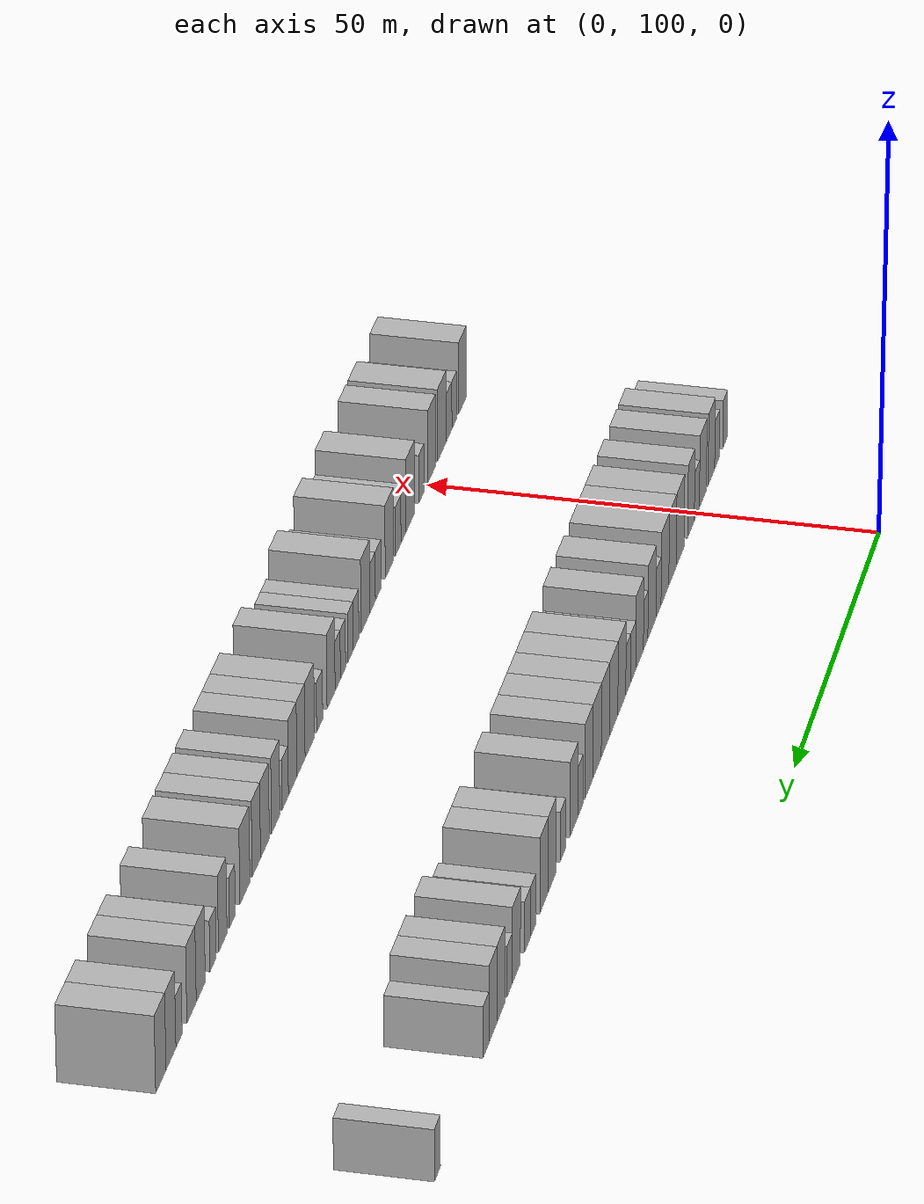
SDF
<sdf version="1.6">
 <world name="default">
  <model name="building_77">
   <static>1</static>
   <pose>25.0000 84.0003 0 0.000000 0.000000 0.000000</pose>
   <link name="link">
    <pose>0 0 3.00 0 0 0</pose>
    <collision name="collision"><geometry><box><size>10.0000 2.5776 6.0000</size></box></geometry></collision>
    <visual name="visual">
     <cast_shadows>0</cast_shadows>
     <geometry><box><size>10.0000 2.5776 6.0000</size></box></geometry>
     <material>
      <script>
       <uri>model://HANNAS_wall/materials/scripts</uri>
       <uri>model://HANNAS_wall/materials/textures</uri>
       <name>vrc/HANNAS_wall</name>
      </script>
     </material>
    </visual>
   </link>
  </model>
  <model name="building_78">
   <static>1</static>
   <pose>25.0000 88.6658 0 0.000000 0.000000 0.000000</pose>
   <link name="link">
    <pose>0 0 3.00 0 0 0</pose>
    <collision name="collision"><geometry><box><size>10.0000 2.7533 6.0000</size></box></geometry></collision>
    <visual name="visual">
     <cast_shadows>0</cast_shadows>
     <geometry><box><size>10.0000 2.7533 6.0000</size></box></geometry>
     <material>
      <script>
       <uri>model://HANNAS_wall/materials/scripts</uri>
       <uri>model://HANNAS_wall/materials/textures</uri>
       <name>vrc/HANNAS_wall</name>
      </script>
     </material>
    </visual>
   </link>
  </model>
  <model name="building_79">
   <static>1</static>
   <pose>25.0000 91.9512 0 0.000000 0.000000 0.000000</pose>
   <link name="link">
    <pose>0 0 4.50 0 0 0</pose>
    <collision name="collision"><geometry><box><size>10.0000 3.8175 9.0000</size></box></geometry></collision>
    <visual name="visual">
     <cast_shadows>0</cast_shadows>
     <geometry><box><size>10.0000 3.8175 9.0000</size></box></geometry>
     <material>
      <script>
       <uri>model://HANNAS_wall/materials/scripts</uri>
       <uri>model://HANNAS_wall/materials/textures</uri>
       <name>vrc/HANNAS_wall</name>
      </script>
     </material>
    </visual>
   </link>
  </model>
  <model name="building_80">
   <static>1</static>
   <pose>25.0000 96.8436 0 0.000000 0.000000 0.000000</pose>
   <link name="link">
    <pose>0 0 4.50 0 0 0</pose>
    <collision name="collision"><geometry><box><size>10.0000 3.9672 9.0000</size></box></geometry></collision>
    <visual name="visual">
     <cast_shadows>0</cast_shadows>
     <geometry><box><size>10.0000 3.9672 9.0000</size></box></geometry>
     <material>
      <script>
       <uri>model://HANNAS_wall/materials/scripts</uri>
       <uri>model://HANNAS_wall/materials/textures</uri>
       <name>vrc/HANNAS_wall</name>
      </script>
     </material>
    </visual>
   </link>
  </model>
  <model name="building_81">
   <static>1</static>
   <pose>25.0000 100.2625 0 0.000000 0.000000 0.000000</pose>
   <link name="link">
    <pose>0 0 3.00 0 0 0</pose>
    <collision name="collision"><geometry><box><size>10.0000 2.8705 6.0000</size></box></geometry></collision>
    <visual name="visual">
     <cast_shadows>0</cast_shadows>
     <geometry><box><size>10.0000 2.8705 6.0000</size></box></geometry>
     <material>
      <script>
       <uri>model://HANNAS_wall/materials/scripts</uri>
       <uri>model://HANNAS_wall/materials/textures</uri>
       <name>vrc/HANNAS_wall</name>
      </script>
     </material>
    </visual>
   </link>
  </model>
  <model name="building_82">
   <static>1</static>
   <pose>25.0000 103.6023 0 0.000000 0.000000 0.000000</pose>
   <link name="link">
    <pose>0 0 4.50 0 0 0</pose>
    <collision name="collision"><geometry><box><size>10.0000 3.8092 9.0000</size></box></geometry></collision>
    <visual name="visual">
     <cast_shadows>0</cast_shadows>
     <geometry><box><size>10.0000 3.8092 9.0000</size></box></geometry>
     <material>
      <script>
       <uri>model://HANNAS_wall/materials/scripts</uri>
       <uri>model://HANNAS_wall/materials/textures</uri>
       <name>vrc/HANNAS_wall</name>
      </script>
     </material>
    </visual>
   </link>
  </model>
  <model name="building_83">
   <static>1</static>
   <pose>25.0000 109.7144 0 0.000000 0.000000 0.000000</pose>
   <link name="link">
    <pose>0 0 4.50 0 0 0</pose>
    <collision name="collision"><geometry><box><size>10.0000 4.4150 9.0000</size></box></geometry></collision>
    <visual name="visual">
     <cast_shadows>0</cast_shadows>
     <geometry><box><size>10.0000 4.4150 9.0000</size></box></geometry>
     <material>
      <script>
       <uri>model://HANNAS_wall/materials/scripts</uri>
       <uri>model://HANNAS_wall/materials/textures</uri>
       <name>vrc/HANNAS_wall</name>
      </script>
     </material>
    </visual>
   </link>
  </model>
  <model name="building_84">
   <static>1</static>
   <pose>25.0000 113.9698 0 0.000000 0.000000 0.000000</pose>
   <link name="link">
    <pose>0 0 4.50 0 0 0</pose>
    <collision name="collision"><geometry><box><size>10.0000 4.0959 9.0000</size></box></geometry></collision>
    <visual name="visual">
     <cast_shadows>0</cast_shadows>
     <geometry><box><size>10.0000 4.0959 9.0000</size></box></geometry>
     <material>
      <script>
       <uri>model://HANNAS_wall/materials/scripts</uri>
       <uri>model://HANNAS_wall/materials/textures</uri>
       <name>vrc/HANNAS_wall</name>
      </script>
     </material>
    </visual>
   </link>
  </model>
  <model name="building_85">
   <static>1</static>
   <pose>25.0000 118.1588 0 0.000000 0.000000 0.000000</pose>
   <link name="link">
    <pose>0 0 4.50 0 0 0</pose>
    <collision name="collision"><geometry><box><size>10.0000 4.2819 9.0000</size></box></geometry></collision>
    <visual name="visual">
     <cast_shadows>0</cast_shadows>
     <geometry><box><size>10.0000 4.2819 9.0000</size></box></geometry>
     <material>
      <script>
       <uri>model://HANNAS_wall/materials/scripts</uri>
       <uri>model://HANNAS_wall/materials/textures</uri>
       <name>vrc/HANNAS_wall</name>
      </script>
     </material>
    </visual>
   </link>
  </model>
  <model name="building_86">
   <static>1</static>
   <pose>25.0000 121.7034 0 0.000000 0.000000 0.000000</pose>
   <link name="link">
    <pose>0 0 3.00 0 0 0</pose>
    <collision name="collision"><geometry><box><size>10.0000 2.8073 6.0000</size></box></geometry></collision>
    <visual name="visual">
     <cast_shadows>0</cast_shadows>
     <geometry><box><size>10.0000 2.8073 6.0000</size></box></geometry>
     <material>
      <script>
       <uri>model://HANNAS_wall/materials/scripts</uri>
       <uri>model://HANNAS_wall/materials/textures</uri>
       <name>vrc/HANNAS_wall</name>
      </script>
     </material>
    </visual>
   </link>
  </model>
  <model name="building_87">
   <static>1</static>
   <pose>25.0000 125.3158 0 0.000000 0.000000 0.000000</pose>
   <link name="link">
    <pose>0 0 4.50 0 0 0</pose>
    <collision name="collision"><geometry><box><size>10.0000 4.4175 9.0000</size></box></geometry></collision>
    <visual name="visual">
     <cast_shadows>0</cast_shadows>
     <geometry><box><size>10.0000 4.4175 9.0000</size></box></geometry>
     <material>
      <script>
       <uri>model://HANNAS_wall/materials/scripts</uri>
       <uri>model://HANNAS_wall/materials/textures</uri>
       <name>vrc/HANNAS_wall</name>
      </script>
     </material>
    </visual>
   </link>
  </model>
  <model name="building_88">
   <static>1</static>
   <pose>25.0000 128.7336 0 0.000000 0.000000 0.000000</pose>
   <link name="link">
    <pose>0 0 3.00 0 0 0</pose>
    <collision name="collision"><geometry><box><size>10.0000 2.4181 6.0000</size></box></geometry></collision>
    <visual name="visual">
     <cast_shadows>0</cast_shadows>
     <geometry><box><size>10.0000 2.4181 6.0000</size></box></geometry>
     <material>
      <script>
       <uri>model://HANNAS_wall/materials/scripts</uri>
       <uri>model://HANNAS_wall/materials/textures</uri>
       <name>vrc/HANNAS_wall</name>
      </script>
     </material>
    </visual>
   </link>
  </model>
  <model name="building_89">
   <static>1</static>
   <pose>25.0000 131.9948 0 0.000000 0.000000 0.000000</pose>
   <link name="link">
    <pose>0 0 4.50 0 0 0</pose>
    <collision name="collision"><geometry><box><size>10.0000 4.1043 9.0000</size></box></geometry></collision>
    <visual name="visual">
     <cast_shadows>0</cast_shadows>
     <geometry><box><size>10.0000 4.1043 9.0000</size></box></geometry>
     <material>
      <script>
       <uri>model://HANNAS_wall/materials/scripts</uri>
       <uri>model://HANNAS_wall/materials/textures</uri>
       <name>vrc/HANNAS_wall</name>
      </script>
     </material>
    </visual>
   </link>
  </model>
  <model name="building_90">
   <static>1</static>
   <pose>25.0000 135.4542 0 0.000000 0.000000 0.000000</pose>
   <link name="link">
    <pose>0 0 3.00 0 0 0</pose>
    <collision name="collision"><geometry><box><size>10.0000 2.8145 6.0000</size></box></geometry></collision>
    <visual name="visual">
     <cast_shadows>0</cast_shadows>
     <geometry><box><size>10.0000 2.8145 6.0000</size></box></geometry>
     <material>
      <script>
       <uri>model://HANNAS_wall/materials/scripts</uri>
       <uri>model://HANNAS_wall/materials/textures</uri>
       <name>vrc/HANNAS_wall</name>
      </script>
     </material>
    </visual>
   </link>
  </model>
  <model name="building_91">
   <static>1</static>
   <pose>25.0000 138.1438 0 0.000000 0.000000 0.000000</pose>
   <link name="link">
    <pose>0 0 3.00 0 0 0</pose>
    <collision name="collision"><geometry><box><size>10.0000 2.5646 6.0000</size></box></geometry></collision>
    <visual name="visual">
     <cast_shadows>0</cast_shadows>
     <geometry><box><size>10.0000 2.5646 6.0000</size></box></geometry>
     <material>
      <script>
       <uri>model://HANNAS_wall/materials/scripts</uri>
       <uri>model://HANNAS_wall/materials/textures</uri>
       <name>vrc/HANNAS_wall</name>
      </script>
     </material>
    </visual>
   </link>
  </model>
  <model name="building_92">
   <static>1</static>
   <pose>25.0000 141.5321 0 0.000000 0.000000 0.000000</pose>
   <link name="link">
    <pose>0 0 4.50 0 0 0</pose>
    <collision name="collision"><geometry><box><size>10.0000 4.2118 9.0000</size></box></geometry></collision>
    <visual name="visual">
     <cast_shadows>0</cast_shadows>
     <geometry><box><size>10.0000 4.2118 9.0000</size></box></geometry>
     <material>
      <script>
       <uri>model://HANNAS_wall/materials/scripts</uri>
       <uri>model://HANNAS_wall/materials/textures</uri>
       <name>vrc/HANNAS_wall</name>
      </script>
     </material>
    </visual>
   </link>
  </model>
  <model name="building_93">
   <static>1</static>
   <pose>25.0000 145.8253 0 0.000000 0.000000 0.000000</pose>
   <link name="link">
    <pose>0 0 4.50 0 0 0</pose>
    <collision name="collision"><geometry><box><size>10.0000 4.3747 9.0000</size></box></geometry></collision>
    <visual name="visual">
     <cast_shadows>0</cast_shadows>
     <geometry><box><size>10.0000 4.3747 9.0000</size></box></geometry>
     <material>
      <script>
       <uri>model://HANNAS_wall/materials/scripts</uri>
       <uri>model://HANNAS_wall/materials/textures</uri>
       <name>vrc/HANNAS_wall</name>
      </script>
     </material>
    </visual>
   </link>
  </model>
  <model name="building_94">
   <static>1</static>
   <pose>25.0000 150.1693 0 0.000000 0.000000 0.000000</pose>
   <link name="link">
    <pose>0 0 4.50 0 0 0</pose>
    <collision name="collision"><geometry><box><size>10.0000 4.3133 9.0000</size></box></geometry></collision>
    <visual name="visual">
     <cast_shadows>0</cast_shadows>
     <geometry><box><size>10.0000 4.3133 9.0000</size></box></geometry>
     <material>
      <script>
       <uri>model://HANNAS_wall/materials/scripts</uri>
       <uri>model://HANNAS_wall/materials/textures</uri>
       <name>vrc/HANNAS_wall</name>
      </script>
     </material>
    </visual>
   </link>
  </model>
  <model name="building_95">
   <static>1</static>
   <pose>25.0000 154.5454 0 0.000000 0.000000 0.000000</pose>
   <link name="link">
    <pose>0 0 4.50 0 0 0</pose>
    <collision name="collision"><geometry><box><size>10.0000 4.4389 9.0000</size></box></geometry></collision>
    <visual name="visual">
     <cast_shadows>0</cast_shadows>
     <geometry><box><size>10.0000 4.4389 9.0000</size></box></geometry>
     <material>
      <script>
       <uri>model://HANNAS_wall/materials/scripts</uri>
       <uri>model://HANNAS_wall/materials/textures</uri>
       <name>vrc/HANNAS_wall</name>
      </script>
     </material>
    </visual>
   </link>
  </model>
  <model name="building_96">
   <static>1</static>
   <pose>25.0000 158.7840 0 0.000000 0.000000 0.000000</pose>
   <link name="link">
    <pose>0 0 4.50 0 0 0</pose>
    <collision name="collision"><geometry><box><size>10.0000 4.0382 9.0000</size></box></geometry></collision>
    <visual name="visual">
     <cast_shadows>0</cast_shadows>
     <geometry><box><size>10.0000 4.0382 9.0000</size></box></geometry>
     <material>
      <script>
       <uri>model://HANNAS_wall/materials/scripts</uri>
       <uri>model://HANNAS_wall/materials/textures</uri>
       <name>vrc/HANNAS_wall</name>
      </script>
     </material>
    </visual>
   </link>
  </model>
  <model name="building_97">
   <static>1</static>
   <pose>25.0000 163.0999 0 0.000000 0.000000 0.000000</pose>
   <link name="link">
    <pose>0 0 3.00 0 0 0</pose>
    <collision name="collision"><geometry><box><size>10.0000 2.5938 6.0000</size></box></geometry></collision>
    <visual name="visual">
     <cast_shadows>0</cast_shadows>
     <geometry><box><size>10.0000 2.5938 6.0000</size></box></geometry>
     <material>
      <script>
       <uri>model://HANNAS_wall/materials/scripts</uri>
       <uri>model://HANNAS_wall/materials/textures</uri>
       <name>vrc/HANNAS_wall</name>
      </script>
     </material>
    </visual>
   </link>
  </model>
  <model name="building_98">
   <static>1</static>
   <pose>25.0000 166.4507 0 0.000000 0.000000 0.000000</pose>
   <link name="link">
    <pose>0 0 4.50 0 0 0</pose>
    <collision name="collision"><geometry><box><size>10.0000 4.1078 9.0000</size></box></geometry></collision>
    <visual name="visual">
     <cast_shadows>0</cast_shadows>
     <geometry><box><size>10.0000 4.1078 9.0000</size></box></geometry>
     <material>
      <script>
       <uri>model://HANNAS_wall/materials/scripts</uri>
       <uri>model://HANNAS_wall/materials/textures</uri>
       <name>vrc/HANNAS_wall</name>
      </script>
     </material>
    </visual>
   </link>
  </model>
  <model name="building_99">
   <static>1</static>
   <pose>25.0000 171.9386 0 0.000000 0.000000 0.000000</pose>
   <link name="link">
    <pose>0 0 3.00 0 0 0</pose>
    <collision name="collision"><geometry><box><size>10.0000 2.8680 6.0000</size></box></geometry></collision>
    <visual name="visual">
     <cast_shadows>0</cast_shadows>
     <geometry><box><size>10.0000 2.8680 6.0000</size></box></geometry>
     <material>
      <script>
       <uri>model://HANNAS_wall/materials/scripts</uri>
       <uri>model://HANNAS_wall/materials/textures</uri>
       <name>vrc/HANNAS_wall</name>
      </script>
     </material>
    </visual>
   </link>
  </model>
  <model name="building_100">
   <static>1</static>
   <pose>25.0000 177.3512 0 0.000000 0.000000 0.000000</pose>
   <link name="link">
    <pose>0 0 4.50 0 0 0</pose>
    <collision name="collision"><geometry><box><size>10.0000 3.9572 9.0000</size></box></geometry></collision>
    <visual name="visual">
     <cast_shadows>0</cast_shadows>
     <geometry><box><size>10.0000 3.9572 9.0000</size></box></geometry>
     <material>
      <script>
       <uri>model://HANNAS_wall/materials/scripts</uri>
       <uri>model://HANNAS_wall/materials/textures</uri>
       <name>vrc/HANNAS_wall</name>
      </script>
     </material>
    </visual>
   </link>
  </model>
  <model name="building_101">
   <static>1</static>
   <pose>25.0000 181.3995 0 0.000000 0.000000 0.000000</pose>
   <link name="link">
    <pose>0 0 4.50 0 0 0</pose>
    <collision name="collision"><geometry><box><size>10.0000 4.1394 9.0000</size></box></geometry></collision>
    <visual name="visual">
     <cast_shadows>0</cast_shadows>
     <geometry><box><size>10.0000 4.1394 9.0000</size></box></geometry>
     <material>
      <script>
       <uri>model://HANNAS_wall/materials/scripts</uri>
       <uri>model://HANNAS_wall/materials/textures</uri>
       <name>vrc/HANNAS_wall</name>
      </script>
     </material>
    </visual>
   </link>
  </model>
  <model name="building_102">
   <static>1</static>
   <pose>25.0000 186.7818 0 0.000000 0.000000 0.000000</pose>
   <link name="link">
    <pose>0 0 3.00 0 0 0</pose>
    <collision name="collision"><geometry><box><size>10.0000 2.6252 6.0000</size></box></geometry></collision>
    <visual name="visual">
     <cast_shadows>0</cast_shadows>
     <geometry><box><size>10.0000 2.6252 6.0000</size></box></geometry>
     <material>
      <script>
       <uri>model://HANNAS_wall/materials/scripts</uri>
       <uri>model://HANNAS_wall/materials/textures</uri>
       <name>vrc/HANNAS_wall</name>
      </script>
     </material>
    </visual>
   </link>
  </model>
  <model name="building_103">
   <static>1</static>
   <pose>25.0000 189.5373 0 0.000000 0.000000 0.000000</pose>
   <link name="link">
    <pose>0 0 3.00 0 0 0</pose>
    <collision name="collision"><geometry><box><size>10.0000 2.8857 6.0000</size></box></geometry></collision>
    <visual name="visual">
     <cast_shadows>0</cast_shadows>
     <geometry><box><size>10.0000 2.8857 6.0000</size></box></geometry>
     <material>
      <script>
       <uri>model://HANNAS_wall/materials/scripts</uri>
       <uri>model://HANNAS_wall/materials/textures</uri>
       <name>vrc/HANNAS_wall</name>
      </script>
     </material>
    </visual>
   </link>
  </model>
  <model name="building_104">
   <static>1</static>
   <pose>25.0000 194.9158 0 0.000000 0.000000 0.000000</pose>
   <link name="link">
    <pose>0 0 4.50 0 0 0</pose>
    <collision name="collision"><geometry><box><size>10.0000 3.8714 9.0000</size></box></geometry></collision>
    <visual name="visual">
     <cast_shadows>0</cast_shadows>
     <geometry><box><size>10.0000 3.8714 9.0000</size></box></geometry>
     <material>
      <script>
       <uri>model://HANNAS_wall/materials/scripts</uri>
       <uri>model://HANNAS_wall/materials/textures</uri>
       <name>vrc/HANNAS_wall</name>
      </script>
     </material>
    </visual>
   </link>
  </model>
  <model name="building_105">
   <static>1</static>
   <pose>25.0000 198.1887 0 0.000000 0.000000 0.000000</pose>
   <link name="link">
    <pose>0 0 3.00 0 0 0</pose>
    <collision name="collision"><geometry><box><size>10.0000 2.6744 6.0000</size></box></geometry></collision>
    <visual name="visual">
     <cast_shadows>0</cast_shadows>
     <geometry><box><size>10.0000 2.6744 6.0000</size></box></geometry>
     <material>
      <script>
       <uri>model://HANNAS_wall/materials/scripts</uri>
       <uri>model://HANNAS_wall/materials/textures</uri>
       <name>vrc/HANNAS_wall</name>
      </script>
     </material>
    </visual>
   </link>
  </model>
  <model name="building_106">
   <static>1</static>
   <pose>25.0000 202.4174 0 0.000000 0.000000 0.000000</pose>
   <link name="link">
    <pose>0 0 4.50 0 0 0</pose>
    <collision name="collision"><geometry><box><size>10.0000 3.7830 9.0000</size></box></geometry></collision>
    <visual name="visual">
     <cast_shadows>0</cast_shadows>
     <geometry><box><size>10.0000 3.7830 9.0000</size></box></geometry>
     <material>
      <script>
       <uri>model://HANNAS_wall/materials/scripts</uri>
       <uri>model://HANNAS_wall/materials/textures</uri>
       <name>vrc/HANNAS_wall</name>
      </script>
     </material>
    </visual>
   </link>
  </model>
  <model name="building_107">
   <static>1</static>
   <pose>25.0000 206.1493 0 0.000000 0.000000 0.000000</pose>
   <link name="link">
    <pose>0 0 4.50 0 0 0</pose>
    <collision name="collision"><geometry><box><size>10.0000 3.6808 9.0000</size></box></geometry></collision>
    <visual name="visual">
     <cast_shadows>0</cast_shadows>
     <geometry><box><size>10.0000 3.6808 9.0000</size></box></geometry>
     <material>
      <script>
       <uri>model://HANNAS_wall/materials/scripts</uri>
       <uri>model://HANNAS_wall/materials/textures</uri>
       <name>vrc/HANNAS_wall</name>
      </script>
     </material>
    </visual>
   </link>
  </model>
  <model name="building_108">
   <static>1</static>
   <pose>25.0000 209.3699 0 0.000000 0.000000 0.000000</pose>
   <link name="link">
    <pose>0 0 3.00 0 0 0</pose>
    <collision name="collision"><geometry><box><size>10.0000 2.7605 6.0000</size></box></geometry></collision>
    <visual name="visual">
     <cast_shadows>0</cast_shadows>
     <geometry><box><size>10.0000 2.7605 6.0000</size></box></geometry>
     <material>
      <script>
       <uri>model://HANNAS_wall/materials/scripts</uri>
       <uri>model://HANNAS_wall/materials/textures</uri>
       <name>vrc/HANNAS_wall</name>
      </script>
     </material>
    </visual>
   </link>
  </model>
  <model name="building_109">
   <static>1</static>
   <pose>25.0000 231.7550 0 0.000000 0.000000 0.000000</pose>
   <link name="link">
    <pose>0 0 3.00 0 0 0</pose>
    <collision name="collision"><geometry><box><size>10.0000 2.6699 6.0000</size></box></geometry></collision>
    <visual name="visual">
     <cast_shadows>0</cast_shadows>
     <geometry><box><size>10.0000 2.6699 6.0000</size></box></geometry>
     <material>
      <script>
       <uri>model://HANNAS_wall/materials/scripts</uri>
       <uri>model://HANNAS_wall/materials/textures</uri>
       <name>vrc/HANNAS_wall</name>
      </script>
     </material>
    </visual>
   </link>
  </model>
  <model name="building_170">
   <static>1</static>
   <pose>55.0000 81.7763 0 0.000000 0.000000 0.000000</pose>
   <link name="link">
    <pose>0 0 4.50 0 0 0</pose>
    <collision name="collision"><geometry><box><size>10.0000 4.0306 9.0000</size></box></geometry></collision>
    <visual name="visual">
     <cast_shadows>0</cast_shadows>
     <geometry><box><size>10.0000 4.0306 9.0000</size></box></geometry>
     <material>
      <script>
       <uri>model://HANNAS_wall/materials/scripts</uri>
       <uri>model://HANNAS_wall/materials/textures</uri>
       <name>vrc/HANNAS_wall</name>
      </script>
     </material>
    </visual>
   </link>
  </model>
  <model name="building_171">
   <static>1</static>
   <pose>55.0000 86.0451 0 0.000000 0.000000 0.000000</pose>
   <link name="link">
    <pose>0 0 3.00 0 0 0</pose>
    <collision name="collision"><geometry><box><size>10.0000 2.5071 6.0000</size></box></geometry></collision>
    <visual name="visual">
     <cast_shadows>0</cast_shadows>
     <geometry><box><size>10.0000 2.5071 6.0000</size></box></geometry>
     <material>
      <script>
       <uri>model://HANNAS_wall/materials/scripts</uri>
       <uri>model://HANNAS_wall/materials/textures</uri>
       <name>vrc/HANNAS_wall</name>
      </script>
     </material>
    </visual>
   </link>
  </model>
  <model name="building_172">
   <static>1</static>
   <pose>55.0000 88.7736 0 0.000000 0.000000 0.000000</pose>
   <link name="link">
    <pose>0 0 3.00 0 0 0</pose>
    <collision name="collision"><geometry><box><size>10.0000 2.9498 6.0000</size></box></geometry></collision>
    <visual name="visual">
     <cast_shadows>0</cast_shadows>
     <geometry><box><size>10.0000 2.9498 6.0000</size></box></geometry>
     <material>
      <script>
       <uri>model://HANNAS_wall/materials/scripts</uri>
       <uri>model://HANNAS_wall/materials/textures</uri>
       <name>vrc/HANNAS_wall</name>
      </script>
     </material>
    </visual>
   </link>
  </model>
  <model name="building_173">
   <static>1</static>
   <pose>55.0000 92.4739 0 0.000000 0.000000 0.000000</pose>
   <link name="link">
    <pose>0 0 4.50 0 0 0</pose>
    <collision name="collision"><geometry><box><size>10.0000 4.4509 9.0000</size></box></geometry></collision>
    <visual name="visual">
     <cast_shadows>0</cast_shadows>
     <geometry><box><size>10.0000 4.4509 9.0000</size></box></geometry>
     <material>
      <script>
       <uri>model://HANNAS_wall/materials/scripts</uri>
       <uri>model://HANNAS_wall/materials/textures</uri>
       <name>vrc/HANNAS_wall</name>
      </script>
     </material>
    </visual>
   </link>
  </model>
  <model name="building_174">
   <static>1</static>
   <pose>55.0000 97.6009 0 0.000000 0.000000 0.000000</pose>
   <link name="link">
    <pose>0 0 4.50 0 0 0</pose>
    <collision name="collision"><geometry><box><size>10.0000 3.8032 9.0000</size></box></geometry></collision>
    <visual name="visual">
     <cast_shadows>0</cast_shadows>
     <geometry><box><size>10.0000 3.8032 9.0000</size></box></geometry>
     <material>
      <script>
       <uri>model://HANNAS_wall/materials/scripts</uri>
       <uri>model://HANNAS_wall/materials/textures</uri>
       <name>vrc/HANNAS_wall</name>
      </script>
     </material>
    </visual>
   </link>
  </model>
  <model name="building_175">
   <static>1</static>
   <pose>55.0000 102.8661 0 0.000000 0.000000 0.000000</pose>
   <link name="link">
    <pose>0 0 3.00 0 0 0</pose>
    <collision name="collision"><geometry><box><size>10.0000 2.7272 6.0000</size></box></geometry></collision>
    <visual name="visual">
     <cast_shadows>0</cast_shadows>
     <geometry><box><size>10.0000 2.7272 6.0000</size></box></geometry>
     <material>
      <script>
       <uri>model://HANNAS_wall/materials/scripts</uri>
       <uri>model://HANNAS_wall/materials/textures</uri>
       <name>vrc/HANNAS_wall</name>
      </script>
     </material>
    </visual>
   </link>
  </model>
  <model name="building_176">
   <static>1</static>
   <pose>55.0000 108.4358 0 0.000000 0.000000 0.000000</pose>
   <link name="link">
    <pose>0 0 4.50 0 0 0</pose>
    <collision name="collision"><geometry><box><size>10.0000 4.4120 9.0000</size></box></geometry></collision>
    <visual name="visual">
     <cast_shadows>0</cast_shadows>
     <geometry><box><size>10.0000 4.4120 9.0000</size></box></geometry>
     <material>
      <script>
       <uri>model://HANNAS_wall/materials/scripts</uri>
       <uri>model://HANNAS_wall/materials/textures</uri>
       <name>vrc/HANNAS_wall</name>
      </script>
     </material>
    </visual>
   </link>
  </model>
  <model name="building_177">
   <static>1</static>
   <pose>55.0000 111.8921 0 0.000000 0.000000 0.000000</pose>
   <link name="link">
    <pose>0 0 3.00 0 0 0</pose>
    <collision name="collision"><geometry><box><size>10.0000 2.5006 6.0000</size></box></geometry></collision>
    <visual name="visual">
     <cast_shadows>0</cast_shadows>
     <geometry><box><size>10.0000 2.5006 6.0000</size></box></geometry>
     <material>
      <script>
       <uri>model://HANNAS_wall/materials/scripts</uri>
       <uri>model://HANNAS_wall/materials/textures</uri>
       <name>vrc/HANNAS_wall</name>
      </script>
     </material>
    </visual>
   </link>
  </model>
  <model name="building_178">
   <static>1</static>
   <pose>55.0000 114.4828 0 0.000000 0.000000 0.000000</pose>
   <link name="link">
    <pose>0 0 3.00 0 0 0</pose>
    <collision name="collision"><geometry><box><size>10.0000 2.6808 6.0000</size></box></geometry></collision>
    <visual name="visual">
     <cast_shadows>0</cast_shadows>
     <geometry><box><size>10.0000 2.6808 6.0000</size></box></geometry>
     <material>
      <script>
       <uri>model://HANNAS_wall/materials/scripts</uri>
       <uri>model://HANNAS_wall/materials/textures</uri>
       <name>vrc/HANNAS_wall</name>
      </script>
     </material>
    </visual>
   </link>
  </model>
  <model name="building_179">
   <static>1</static>
   <pose>55.0000 118.8618 0 0.000000 0.000000 0.000000</pose>
   <link name="link">
    <pose>0 0 4.50 0 0 0</pose>
    <collision name="collision"><geometry><box><size>10.0000 4.0774 9.0000</size></box></geometry></collision>
    <visual name="visual">
     <cast_shadows>0</cast_shadows>
     <geometry><box><size>10.0000 4.0774 9.0000</size></box></geometry>
     <material>
      <script>
       <uri>model://HANNAS_wall/materials/scripts</uri>
       <uri>model://HANNAS_wall/materials/textures</uri>
       <name>vrc/HANNAS_wall</name>
      </script>
     </material>
    </visual>
   </link>
  </model>
  <model name="building_180">
   <static>1</static>
   <pose>55.0000 124.3030 0 0.000000 0.000000 0.000000</pose>
   <link name="link">
    <pose>0 0 3.00 0 0 0</pose>
    <collision name="collision"><geometry><box><size>10.0000 2.8049 6.0000</size></box></geometry></collision>
    <visual name="visual">
     <cast_shadows>0</cast_shadows>
     <geometry><box><size>10.0000 2.8049 6.0000</size></box></geometry>
     <material>
      <script>
       <uri>model://HANNAS_wall/materials/scripts</uri>
       <uri>model://HANNAS_wall/materials/textures</uri>
       <name>vrc/HANNAS_wall</name>
      </script>
     </material>
    </visual>
   </link>
  </model>
  <model name="building_181">
   <static>1</static>
   <pose>55.0000 127.0494 0 0.000000 0.000000 0.000000</pose>
   <link name="link">
    <pose>0 0 3.00 0 0 0</pose>
    <collision name="collision"><geometry><box><size>10.0000 2.6879 6.0000</size></box></geometry></collision>
    <visual name="visual">
     <cast_shadows>0</cast_shadows>
     <geometry><box><size>10.0000 2.6879 6.0000</size></box></geometry>
     <material>
      <script>
       <uri>model://HANNAS_wall/materials/scripts</uri>
       <uri>model://HANNAS_wall/materials/textures</uri>
       <name>vrc/HANNAS_wall</name>
      </script>
     </material>
    </visual>
   </link>
  </model>
  <model name="building_182">
   <static>1</static>
   <pose>55.0000 130.5399 0 0.000000 0.000000 0.000000</pose>
   <link name="link">
    <pose>0 0 4.50 0 0 0</pose>
    <collision name="collision"><geometry><box><size>10.0000 4.2931 9.0000</size></box></geometry></collision>
    <visual name="visual">
     <cast_shadows>0</cast_shadows>
     <geometry><box><size>10.0000 4.2931 9.0000</size></box></geometry>
     <material>
      <script>
       <uri>model://HANNAS_wall/materials/scripts</uri>
       <uri>model://HANNAS_wall/materials/textures</uri>
       <name>vrc/HANNAS_wall</name>
      </script>
     </material>
    </visual>
   </link>
  </model>
  <model name="building_183">
   <static>1</static>
   <pose>55.0000 135.0408 0 0.000000 0.000000 0.000000</pose>
   <link name="link">
    <pose>0 0 3.00 0 0 0</pose>
    <collision name="collision"><geometry><box><size>10.0000 2.7088 6.0000</size></box></geometry></collision>
    <visual name="visual">
     <cast_shadows>0</cast_shadows>
     <geometry><box><size>10.0000 2.7088 6.0000</size></box></geometry>
     <material>
      <script>
       <uri>model://HANNAS_wall/materials/scripts</uri>
       <uri>model://HANNAS_wall/materials/textures</uri>
       <name>vrc/HANNAS_wall</name>
      </script>
     </material>
    </visual>
   </link>
  </model>
  <model name="building_184">
   <static>1</static>
   <pose>55.0000 137.7053 0 0.000000 0.000000 0.000000</pose>
   <link name="link">
    <pose>0 0 3.00 0 0 0</pose>
    <collision name="collision"><geometry><box><size>10.0000 2.6202 6.0000</size></box></geometry></collision>
    <visual name="visual">
     <cast_shadows>0</cast_shadows>
     <geometry><box><size>10.0000 2.6202 6.0000</size></box></geometry>
     <material>
      <script>
       <uri>model://HANNAS_wall/materials/scripts</uri>
       <uri>model://HANNAS_wall/materials/textures</uri>
       <name>vrc/HANNAS_wall</name>
      </script>
     </material>
    </visual>
   </link>
  </model>
  <model name="building_185">
   <static>1</static>
   <pose>55.0000 141.2347 0 0.000000 0.000000 0.000000</pose>
   <link name="link">
    <pose>0 0 3.00 0 0 0</pose>
    <collision name="collision"><geometry><box><size>10.0000 2.4386 6.0000</size></box></geometry></collision>
    <visual name="visual">
     <cast_shadows>0</cast_shadows>
     <geometry><box><size>10.0000 2.4386 6.0000</size></box></geometry>
     <material>
      <script>
       <uri>model://HANNAS_wall/materials/scripts</uri>
       <uri>model://HANNAS_wall/materials/textures</uri>
       <name>vrc/HANNAS_wall</name>
      </script>
     </material>
    </visual>
   </link>
  </model>
  <model name="building_186">
   <static>1</static>
   <pose>55.0000 143.7174 0 0.000000 0.000000 0.000000</pose>
   <link name="link">
    <pose>0 0 3.00 0 0 0</pose>
    <collision name="collision"><geometry><box><size>10.0000 2.5268 6.0000</size></box></geometry></collision>
    <visual name="visual">
     <cast_shadows>0</cast_shadows>
     <geometry><box><size>10.0000 2.5268 6.0000</size></box></geometry>
     <material>
      <script>
       <uri>model://HANNAS_wall/materials/scripts</uri>
       <uri>model://HANNAS_wall/materials/textures</uri>
       <name>vrc/HANNAS_wall</name>
      </script>
     </material>
    </visual>
   </link>
  </model>
  <model name="building_187">
   <static>1</static>
   <pose>55.0000 146.8673 0 0.000000 0.000000 0.000000</pose>
   <link name="link">
    <pose>0 0 4.50 0 0 0</pose>
    <collision name="collision"><geometry><box><size>10.0000 3.7731 9.0000</size></box></geometry></collision>
    <visual name="visual">
     <cast_shadows>0</cast_shadows>
     <geometry><box><size>10.0000 3.7731 9.0000</size></box></geometry>
     <material>
      <script>
       <uri>model://HANNAS_wall/materials/scripts</uri>
       <uri>model://HANNAS_wall/materials/textures</uri>
       <name>vrc/HANNAS_wall</name>
      </script>
     </material>
    </visual>
   </link>
  </model>
  <model name="building_188">
   <static>1</static>
   <pose>55.0000 152.1804 0 0.000000 0.000000 0.000000</pose>
   <link name="link">
    <pose>0 0 3.00 0 0 0</pose>
    <collision name="collision"><geometry><box><size>10.0000 2.8532 6.0000</size></box></geometry></collision>
    <visual name="visual">
     <cast_shadows>0</cast_shadows>
     <geometry><box><size>10.0000 2.8532 6.0000</size></box></geometry>
     <material>
      <script>
       <uri>model://HANNAS_wall/materials/scripts</uri>
       <uri>model://HANNAS_wall/materials/textures</uri>
       <name>vrc/HANNAS_wall</name>
      </script>
     </material>
    </visual>
   </link>
  </model>
  <model name="building_189">
   <static>1</static>
   <pose>55.0000 156.7653 0 0.000000 0.000000 0.000000</pose>
   <link name="link">
    <pose>0 0 4.50 0 0 0</pose>
    <collision name="collision"><geometry><box><size>10.0000 4.3166 9.0000</size></box></geometry></collision>
    <visual name="visual">
     <cast_shadows>0</cast_shadows>
     <geometry><box><size>10.0000 4.3166 9.0000</size></box></geometry>
     <material>
      <script>
       <uri>model://HANNAS_wall/materials/scripts</uri>
       <uri>model://HANNAS_wall/materials/textures</uri>
       <name>vrc/HANNAS_wall</name>
      </script>
     </material>
    </visual>
   </link>
  </model>
  <model name="building_190">
   <static>1</static>
   <pose>55.0000 160.7802 0 0.000000 0.000000 0.000000</pose>
   <link name="link">
    <pose>0 0 4.50 0 0 0</pose>
    <collision name="collision"><geometry><box><size>10.0000 3.7132 9.0000</size></box></geometry></collision>
    <visual name="visual">
     <cast_shadows>0</cast_shadows>
     <geometry><box><size>10.0000 3.7132 9.0000</size></box></geometry>
     <material>
      <script>
       <uri>model://HANNAS_wall/materials/scripts</uri>
       <uri>model://HANNAS_wall/materials/textures</uri>
       <name>vrc/HANNAS_wall</name>
      </script>
     </material>
    </visual>
   </link>
  </model>
  <model name="building_191">
   <static>1</static>
   <pose>55.0000 164.5792 0 0.000000 0.000000 0.000000</pose>
   <link name="link">
    <pose>0 0 4.50 0 0 0</pose>
    <collision name="collision"><geometry><box><size>10.0000 3.8848 9.0000</size></box></geometry></collision>
    <visual name="visual">
     <cast_shadows>0</cast_shadows>
     <geometry><box><size>10.0000 3.8848 9.0000</size></box></geometry>
     <material>
      <script>
       <uri>model://HANNAS_wall/materials/scripts</uri>
       <uri>model://HANNAS_wall/materials/textures</uri>
       <name>vrc/HANNAS_wall</name>
      </script>
     </material>
    </visual>
   </link>
  </model>
  <model name="building_192">
   <static>1</static>
   <pose>55.0000 167.9494 0 0.000000 0.000000 0.000000</pose>
   <link name="link">
    <pose>0 0 3.00 0 0 0</pose>
    <collision name="collision"><geometry><box><size>10.0000 2.8555 6.0000</size></box></geometry></collision>
    <visual name="visual">
     <cast_shadows>0</cast_shadows>
     <geometry><box><size>10.0000 2.8555 6.0000</size></box></geometry>
     <material>
      <script>
       <uri>model://HANNAS_wall/materials/scripts</uri>
       <uri>model://HANNAS_wall/materials/textures</uri>
       <name>vrc/HANNAS_wall</name>
      </script>
     </material>
    </visual>
   </link>
  </model>
  <model name="building_193">
   <static>1</static>
   <pose>55.0000 172.2371 0 0.000000 0.000000 0.000000</pose>
   <link name="link">
    <pose>0 0 4.50 0 0 0</pose>
    <collision name="collision"><geometry><box><size>10.0000 3.7198 9.0000</size></box></geometry></collision>
    <visual name="visual">
     <cast_shadows>0</cast_shadows>
     <geometry><box><size>10.0000 3.7198 9.0000</size></box></geometry>
     <material>
      <script>
       <uri>model://HANNAS_wall/materials/scripts</uri>
       <uri>model://HANNAS_wall/materials/textures</uri>
       <name>vrc/HANNAS_wall</name>
      </script>
     </material>
    </visual>
   </link>
  </model>
  <model name="building_194">
   <static>1</static>
   <pose>55.0000 177.0463 0 0.000000 0.000000 0.000000</pose>
   <link name="link">
    <pose>0 0 4.50 0 0 0</pose>
    <collision name="collision"><geometry><box><size>10.0000 3.8986 9.0000</size></box></geometry></collision>
    <visual name="visual">
     <cast_shadows>0</cast_shadows>
     <geometry><box><size>10.0000 3.8986 9.0000</size></box></geometry>
     <material>
      <script>
       <uri>model://HANNAS_wall/materials/scripts</uri>
       <uri>model://HANNAS_wall/materials/textures</uri>
       <name>vrc/HANNAS_wall</name>
      </script>
     </material>
    </visual>
   </link>
  </model>
  <model name="building_195">
   <static>1</static>
   <pose>55.0000 180.8439 0 0.000000 0.000000 0.000000</pose>
   <link name="link">
    <pose>0 0 4.50 0 0 0</pose>
    <collision name="collision"><geometry><box><size>10.0000 3.6966 9.0000</size></box></geometry></collision>
    <visual name="visual">
     <cast_shadows>0</cast_shadows>
     <geometry><box><size>10.0000 3.6966 9.0000</size></box></geometry>
     <material>
      <script>
       <uri>model://HANNAS_wall/materials/scripts</uri>
       <uri>model://HANNAS_wall/materials/textures</uri>
       <name>vrc/HANNAS_wall</name>
      </script>
     </material>
    </visual>
   </link>
  </model>
  <model name="building_196">
   <static>1</static>
   <pose>55.0000 185.8799 0 0.000000 0.000000 0.000000</pose>
   <link name="link">
    <pose>0 0 4.50 0 0 0</pose>
    <collision name="collision"><geometry><box><size>10.0000 4.3755 9.0000</size></box></geometry></collision>
    <visual name="visual">
     <cast_shadows>0</cast_shadows>
     <geometry><box><size>10.0000 4.3755 9.0000</size></box></geometry>
     <material>
      <script>
       <uri>model://HANNAS_wall/materials/scripts</uri>
       <uri>model://HANNAS_wall/materials/textures</uri>
       <name>vrc/HANNAS_wall</name>
      </script>
     </material>
    </visual>
   </link>
  </model>
  <model name="building_197">
   <static>1</static>
   <pose>55.0000 191.3717 0 0.000000 0.000000 0.000000</pose>
   <link name="link">
    <pose>0 0 3.00 0 0 0</pose>
    <collision name="collision"><geometry><box><size>10.0000 2.6079 6.0000</size></box></geometry></collision>
    <visual name="visual">
     <cast_shadows>0</cast_shadows>
     <geometry><box><size>10.0000 2.6079 6.0000</size></box></geometry>
     <material>
      <script>
       <uri>model://HANNAS_wall/materials/scripts</uri>
       <uri>model://HANNAS_wall/materials/textures</uri>
       <name>vrc/HANNAS_wall</name>
      </script>
     </material>
    </visual>
   </link>
  </model>
  <model name="building_198">
   <static>1</static>
   <pose>55.0000 195.5055 0 0.000000 0.000000 0.000000</pose>
   <link name="link">
    <pose>0 0 4.50 0 0 0</pose>
    <collision name="collision"><geometry><box><size>10.0000 3.6597 9.0000</size></box></geometry></collision>
    <visual name="visual">
     <cast_shadows>0</cast_shadows>
     <geometry><box><size>10.0000 3.6597 9.0000</size></box></geometry>
     <material>
      <script>
       <uri>model://HANNAS_wall/materials/scripts</uri>
       <uri>model://HANNAS_wall/materials/textures</uri>
       <name>vrc/HANNAS_wall</name>
      </script>
     </material>
    </visual>
   </link>
  </model>
  <model name="building_199">
   <static>1</static>
   <pose>55.0000 199.6644 0 0.000000 0.000000 0.000000</pose>
   <link name="link">
    <pose>0 0 3.00 0 0 0</pose>
    <collision name="collision"><geometry><box><size>10.0000 2.6582 6.0000</size></box></geometry></collision>
    <visual name="visual">
     <cast_shadows>0</cast_shadows>
     <geometry><box><size>10.0000 2.6582 6.0000</size></box></geometry>
     <material>
      <script>
       <uri>model://HANNAS_wall/materials/scripts</uri>
       <uri>model://HANNAS_wall/materials/textures</uri>
       <name>vrc/HANNAS_wall</name>
      </script>
     </material>
    </visual>
   </link>
  </model>
  <model name="building_200">
   <static>1</static>
   <pose>55.0000 204.9047 0 0.000000 0.000000 0.000000</pose>
   <link name="link">
    <pose>0 0 4.50 0 0 0</pose>
    <collision name="collision"><geometry><box><size>10.0000 3.8222 9.0000</size></box></geometry></collision>
    <visual name="visual">
     <cast_shadows>0</cast_shadows>
     <geometry><box><size>10.0000 3.8222 9.0000</size></box></geometry>
     <material>
      <script>
       <uri>model://HANNAS_wall/materials/scripts</uri>
       <uri>model://HANNAS_wall/materials/textures</uri>
       <name>vrc/HANNAS_wall</name>
      </script>
     </material>
    </visual>
   </link>
  </model>
  <model name="building_201">
   <static>1</static>
   <pose>55.0000 208.7800 0 0.000000 0.000000 0.000000</pose>
   <link name="link">
    <pose>0 0 4.50 0 0 0</pose>
    <collision name="collision"><geometry><box><size>10.0000 3.9286 9.0000</size></box></geometry></collision>
    <visual name="visual">
     <cast_shadows>0</cast_shadows>
     <geometry><box><size>10.0000 3.9286 9.0000</size></box></geometry>
     <material>
      <script>
       <uri>model://HANNAS_wall/materials/scripts</uri>
       <uri>model://HANNAS_wall/materials/textures</uri>
       <name>vrc/HANNAS_wall</name>
      </script>
     </material>
    </visual>
   </link>
  </model>
  <model name="building_202">
   <static>1</static>
   <pose>55.0000 214.0428 0 0.000000 0.000000 0.000000</pose>
   <link name="link">
    <pose>0 0 3.00 0 0 0</pose>
    <collision name="collision"><geometry><box><size>10.0000 2.5970 6.0000</size></box></geometry></collision>
    <visual name="visual">
     <cast_shadows>0</cast_shadows>
     <geometry><box><size>10.0000 2.5970 6.0000</size></box></geometry>
     <material>
      <script>
       <uri>model://HANNAS_wall/materials/scripts</uri>
       <uri>model://HANNAS_wall/materials/textures</uri>
       <name>vrc/HANNAS_wall</name>
      </script>
     </material>
    </visual>
   </link>
  </model>
  <model name="building_203">
   <static>1</static>
   <pose>55.0000 217.3662 0 0.000000 0.000000 0.000000</pose>
   <link name="link">
    <pose>0 0 4.50 0 0 0</pose>
    <collision name="collision"><geometry><box><size>10.0000 4.0497 9.0000</size></box></geometry></collision>
    <visual name="visual">
     <cast_shadows>0</cast_shadows>
     <geometry><box><size>10.0000 4.0497 9.0000</size></box></geometry>
     <material>
      <script>
       <uri>model://HANNAS_wall/materials/scripts</uri>
       <uri>model://HANNAS_wall/materials/textures</uri>
       <name>vrc/HANNAS_wall</name>
      </script>
     </material>
    </visual>
   </link>
  </model>
  <model name="building_204">
   <static>1</static>
   <pose>55.0000 221.5245 0 0.000000 0.000000 0.000000</pose>
   <link name="link">
    <pose>0 0 4.50 0 0 0</pose>
    <collision name="collision"><geometry><box><size>10.0000 4.2670 9.0000</size></box></geometry></collision>
    <visual name="visual">
     <cast_shadows>0</cast_shadows>
     <geometry><box><size>10.0000 4.2670 9.0000</size></box></geometry>
     <material>
      <script>
       <uri>model://HANNAS_wall/materials/scripts</uri>
       <uri>model://HANNAS_wall/materials/textures</uri>
       <name>vrc/HANNAS_wall</name>
      </script>
     </material>
    </visual>
   </link>
  </model>
 </world>
</sdf>
